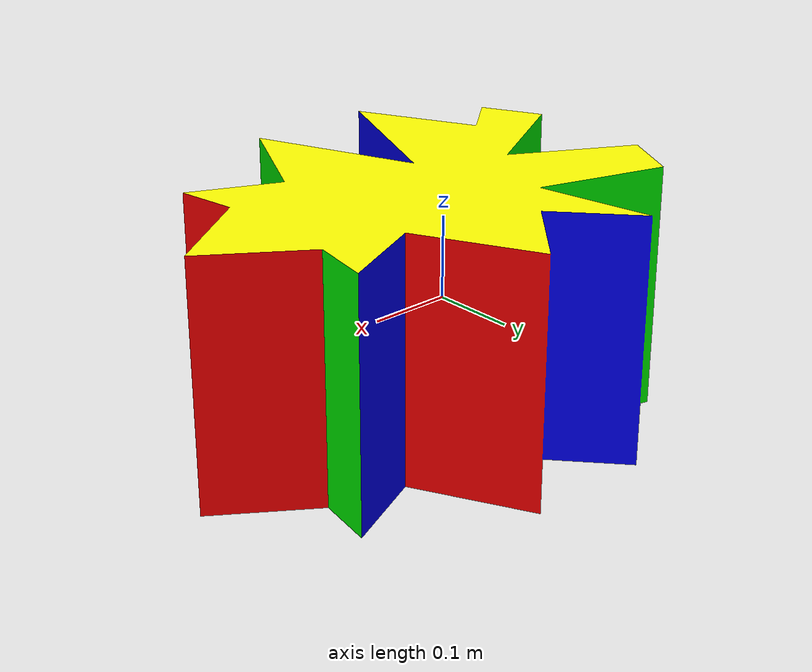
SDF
<?xml version="1.0"?>
<sdf version="1.6">
  <model name="20prism_final">
    <static>true</static>
    <pose>0 0 0 0 0 0</pose>
    <link name="link1">

      <visual name="visual1">
        <geometry>
          <mesh>
            <uri>model://20prism_final/meshes/20prism_final.DAE</uri>
   	    <scale>1 1 1</scale>
          </mesh>
        </geometry>
      </visual>

    </link>
  </model>
</sdf>
